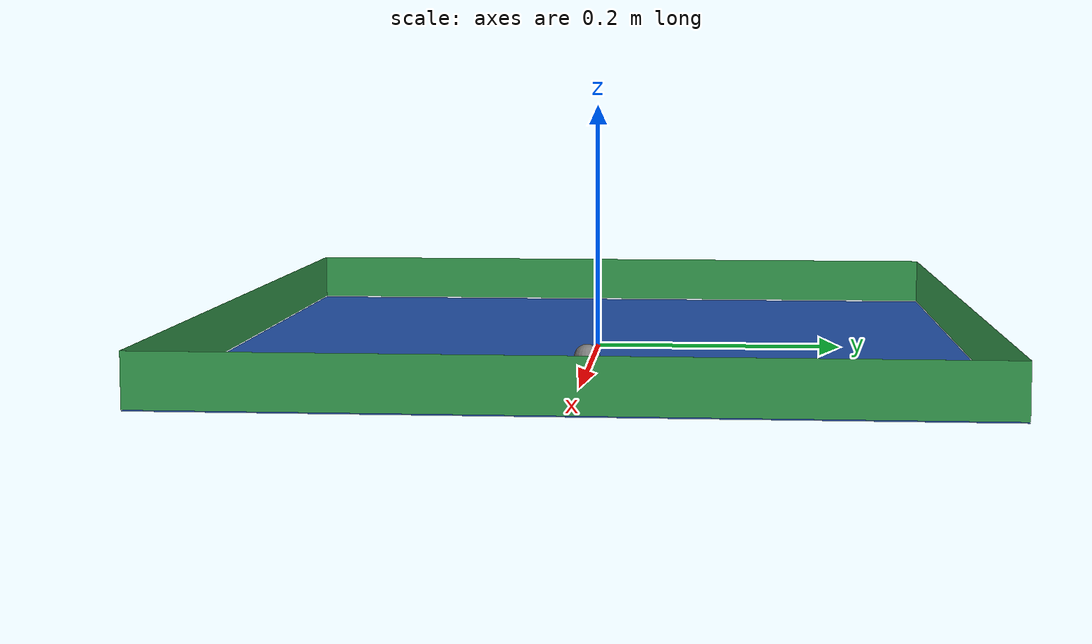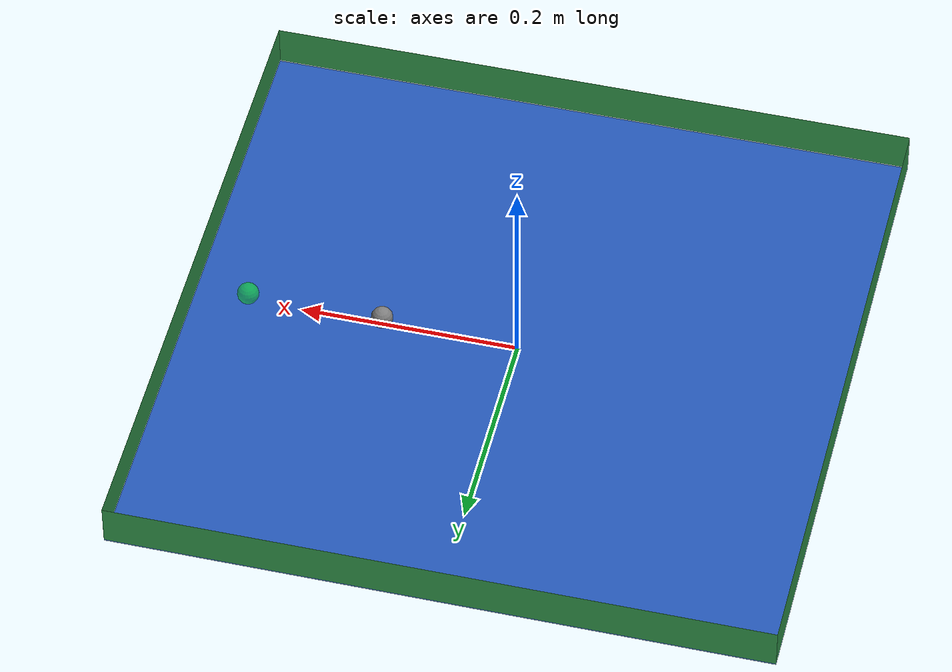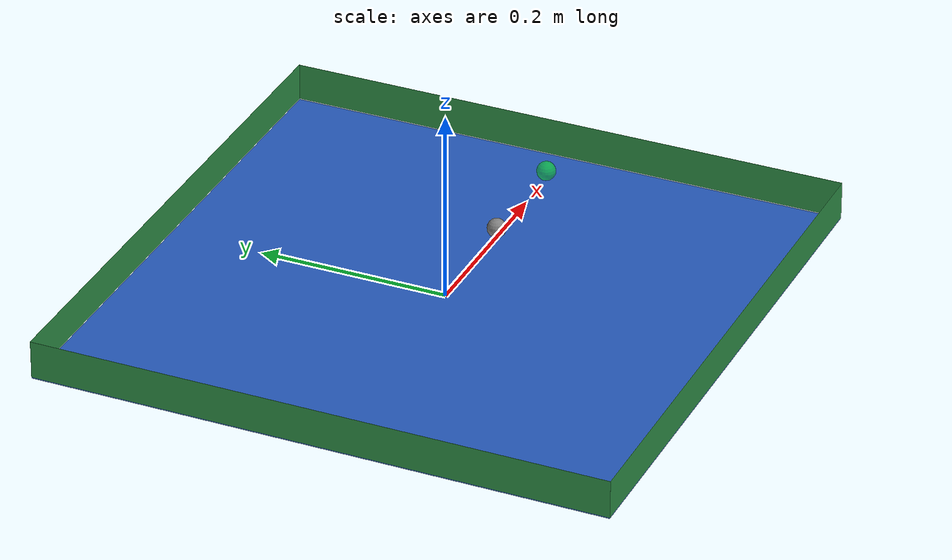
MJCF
<mujoco model="Particle3d Control">
  <include file="../common.xml"/>
  <include file="particle.xml" />

  <size memory="10K"/>

  <custom>
    <!-- agent -->
    <numeric name="task_risk" data="0" />
    <numeric name="agent_planner" data="6" />
    <numeric name="agent_horizon" data="0.25" />
    <numeric name="agent_timestep" data="0.01" />
    <numeric name="agent_policy_width" data="0.0015" />
    <numeric name="sampling_spline_points" data="5" />
    <numeric name="sampling_exploration" data="0.01" />
    <numeric name="gradient_spline_points" data="5" />

    <!-- direct -->
    <numeric name="direct_sensor_start" data="0"/>
    <numeric name="direct_number_sensor" data="3"/>
    <numeric name="direct_force_weight" data="1.0 1.0 1.0"/>
  </custom>

  <sensor>
    <!-- cost -->
    <user name="Position" dim="3" user="0 5.0 0.0 10.0" />
    <user name="Velocity" dim="3" user="0 0.1 0.0 1.0" />
    <user name="Control" dim="3" user="0 0.1 0.0 1.0" />

    <!-- trace -->
    <framepos name="trace0" objtype="site" objname="tip"/>

    <!-- residual -->
    <framepos name="position" objtype="site" objname="tip"/>
    <framelinvel name="velocity" objtype="site" objname="tip"/>
  </sensor>
</mujoco>

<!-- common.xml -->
<mujoco>

    <visual>
        <headlight ambient=".4 .4 .4" diffuse=".8 .8 .8" specular="0.1 0.1 0.1"/>
        <map znear=".01"/>
        <quality shadowsize="2048"/>
        <global elevation="-15"/>
    </visual>

    <asset>
        <texture name="blue_grid" type="2d" builtin="checker" rgb1=".02 .14 .44" rgb2=".27 .55 1" width="300" height="300" mark="edge" markrgb="1 1 1"/>
        <material name="blue_grid" texture="blue_grid" texrepeat="1 1" texuniform="true" reflectance=".2"/>

        <texture name="grey_grid" type="2d" builtin="checker" rgb1=".26 .26 .26" rgb2=".6 .6 .6" width="300" height="300" mark="edge" markrgb="1 1 1"/>
        <material name="grey_grid" texture="grey_grid" texrepeat="1 1" texuniform="true" reflectance=".2"/>
        <texture name="skybox" type="skybox" builtin="gradient" rgb1=".66 .79 1" rgb2=".9 .91 .93" width="800" height="800"/>

        <material name="self" rgba=".7 .5 .3 1"/>
        <material name="self_default" rgba=".7 .5 .3 1"/>
        <material name="self_highlight" rgba="0 .5 .3 1"/>
        <material name="effector" rgba=".7 .4 .2 1"/>
        <material name="effector_default" rgba=".7 .4 .2 1"/>
        <material name="effector_highlight" rgba="0 .5 .3 1"/>
        <material name="decoration" rgba=".2 .6 .3 1"/>
        <material name="eye" rgba="0 .2 1 1"/>
        <material name="target" rgba=".6 .3 .3 1"/>
        <material name="target_default" rgba=".6 .3 .3 1"/>
        <material name="target_highlight" rgba=".6 .3 .3 .4"/>
        <material name="site" rgba=".5 .5 .5 .3"/>
    </asset>

    <size memory="1M"/>

    <statistic extent="0.4" center="0.3 0.1 0"/>

    <visual>
        <quality shadowsize="8192"/>
        <global azimuth="180" elevation="-30"/>
    </visual>

    <default>
        <geom friction="1.0"/>
    </default>

    <compiler angle="radian" autolimits="true"/>

    <asset>
        <mesh name="apple" file="../../shared_assets/apple/apple.obj" />
        <mesh name="apple_contact0" file="../../shared_assets/apple/contact0.stl"  />
        <mesh name="apple_contact1" file="../../shared_assets/apple/contact1.stl"  />

        <mesh name="doorknob" file="../../shared_assets/doorknob/doorknob.obj" />

        <mesh name="flashlight" file="../../shared_assets/flashlight/flashlight.obj" />
        <mesh name="flashlight_contact0" file="../../shared_assets/flashlight/contact0.stl"  />
        <mesh name="flashlight_contact1" file="../../shared_assets/flashlight/contact1.stl"  />

        <mesh name="hammer" file="../../shared_assets/hammer/hammer.obj" />
        <mesh name="hammer_contact0" file="../../shared_assets/hammer/contact0.stl"  />
        <mesh name="hammer_contact1" file="../../shared_assets/hammer/contact1.stl"  />

        <mesh name="phone" file="../../shared_assets/phone/phone.obj" />
        <mesh name="phone_contact0" file="../../shared_assets/phone/contact0.stl"  />
        <mesh name="phone_contact1" file="../../shared_assets/phone/contact1.stl"  />
        <mesh name="phone_contact2" file="../../shared_assets/phone/contact2.stl"  />

        <mesh name="stapler" file="../../shared_assets/stapler/stapler.obj" />
        <mesh name="stapler_contact0" file="../../shared_assets/stapler/contact0.stl"  />
        <mesh name="stapler_contact1" file="../../shared_assets/stapler/contact1.stl"  />
        <mesh name="stapler_contact2" file="../../shared_assets/stapler/contact2.stl"  />
        <mesh name="stapler_contact3" file="../../shared_assets/stapler/contact3.stl"  />
        <mesh name="stapler_contact4" file="../../shared_assets/stapler/contact4.stl"  />

        <mesh name="waterbottle" file="../../shared_assets/waterbottle/waterbottle.obj" />
        <mesh name="waterbottle_contact0" file="../../shared_assets/waterbottle/contact0.stl"  />
        <mesh name="waterbottle_contact1" file="../../shared_assets/waterbottle/contact1.stl"  />
    </asset>

</mujoco>

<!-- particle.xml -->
<mujoco model="Particle">
  <option timestep="0.01">
    <flag contact="disable"/>
  </option>

  <default>
    <joint type="hinge" axis="0 0 1" limited="true" range="-.29 .29" damping="1"/>
    <motor gear=".1" ctrlrange="-1 1" ctrllimited="true"/>
  </default>

  <worldbody>
    <body name="goal" mocap="true" pos="0.25 0 0.01" quat="1 0 0 0">
        <geom type="sphere" size=".01" contype="0" conaffinity="0" rgba="0 1 0 .5"/>
    </body>
    <light name="light" pos="0 0 1"/>
    <camera name="fixed" pos="0 0 .75" quat="1 0 0 0"/>
    <geom name="ground" type="plane" pos="0 0 0" size=".3 .3 .1" material="blue_grid"/>
    <geom name="wall_x" type="plane" pos="-.3 0 .02" zaxis="1 0 0"  size=".02 .3 .02" material="decoration"/>
    <geom name="wall_y" type="plane" pos="0 -.3 .02" zaxis="0 1 0"  size=".3 .02 .02" material="decoration"/>
    <geom name="wall_neg_x" type="plane" pos=".3 0 .02" zaxis="-1 0 0"  size=".02 .3 .02" material="decoration"/>
    <geom name="wall_neg_y" type="plane" pos="0 .3 .02" zaxis="0 -1 0"  size=".3 .02 .02" material="decoration"/>

    <body name="pointmass" pos="0.125 0 .01">
      <camera name="cam0" pos="0 -0.3 0.3" xyaxes="1 0 0 0 0.7 0.7"/>
      <joint name="root_x" type="slide"  pos="0 0 0" axis="1 0 0" />
      <joint name="root_y" type="slide"  pos="0 0 0" axis="0 1 0" />
      <joint name="root_z" type="slide"  pos="0 0 0" axis="0 0 1" />
      <geom name="pointmass" type="sphere" size=".01" mass=".3"/>
      <site name="tip" pos="0 0 0" size="0.01"/>
    </body>
  </worldbody>

  <actuator>
    <motor name="x_motor" joint="root_x" gear="1" ctrllimited="true" ctrlrange="-1 1"/>
    <motor name="y_motor" joint="root_y" gear="1" ctrllimited="true" ctrlrange="-1 1"/>
    <motor name="z_motor" joint="root_z" gear="1" ctrllimited="true" ctrlrange="-1 1"/>
  </actuator>
</mujoco>
